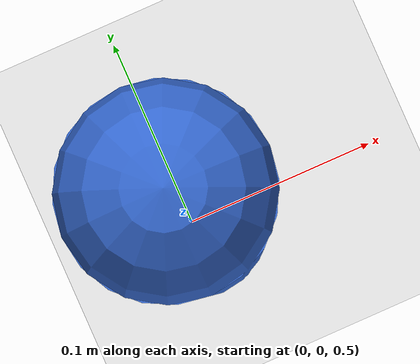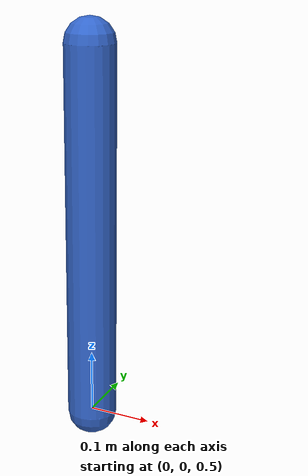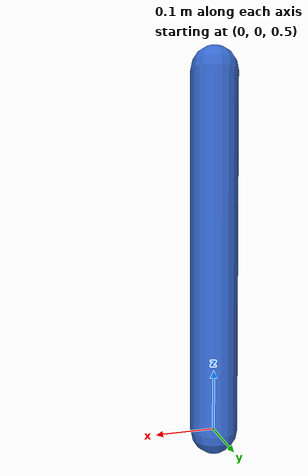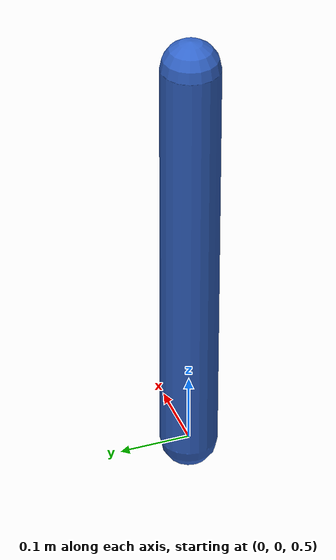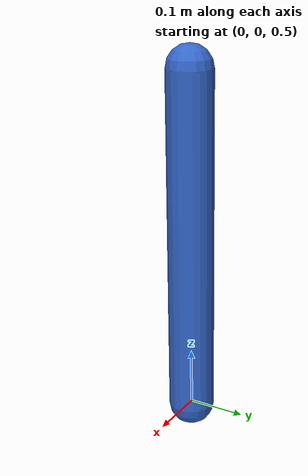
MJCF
<mujoco model="single_joint_pendulum">
    <!-- 这是一个单关节摆的物理模型 -->
    <compiler angle="radian"/>
     <!-- 设置角度为弧度制 -->
    <option timestep="0.002" gravity="0 0 -9.81"/>
    <!--设置步长、惯性-->
    <visual>
        <headlight ambient="0.6 0.6 0.6" diffuse="0.4 0.4 0.4" specular="0 0 0"/>
             <!-- 显式效果设置 -->
    </visual>

    <worldbody>
             <!-- 世界坐标系 -->
        <geom name="floor" type="plane" size="2 2 0.1" rgba="0.9 0.9 0.9 1"/>
             <!-- gemo_几何体；rgba_颜色 -->

        <body name="link1" pos="0 0 0.5">
                 <!-- body_刚体；pos，表示Body的局部坐标原点 -->
            <joint name="hinge1" type="hinge" axis="0 1 0" pos="0 0 0" damping="0"/>
                 <!-- joint_关节；type_关节类型；axis_转动方向；damping_阻尼 -->
            <geom name="rod" type="capsule" fromto="0 0 0 0 0 0.6" size="0.04" density="1000" rgba="0.2 0.4 0.8 1"/>
                 <!-- gemo_杆的实体模型；type_形状，胶囊体；fromto_from to:从（000）到（000.6）；size_capsule的半径 -->
        </body>
    </worldbody>

    <actuator>
             <!-- actuator_动力/激励 -->
        <motor name="motor1" joint="hinge1" gear="1"/>
             <!-- motor_定义一个电机式执行器；作用于hinge1；gear_注入缩放系数 -->
    </actuator>
</mujoco>
